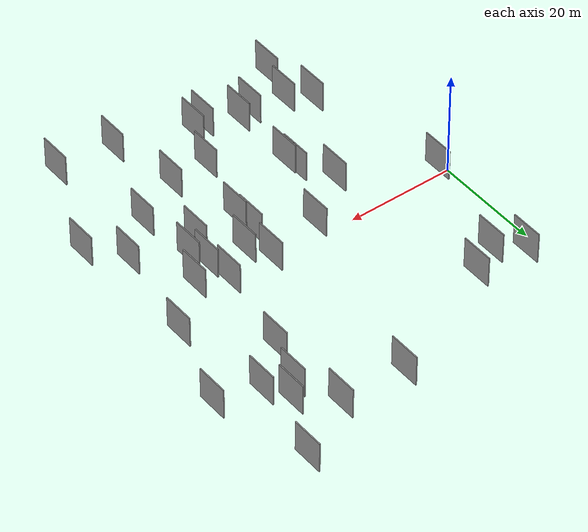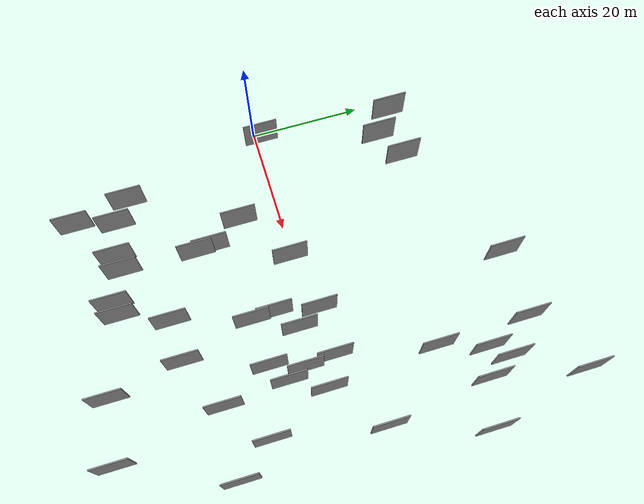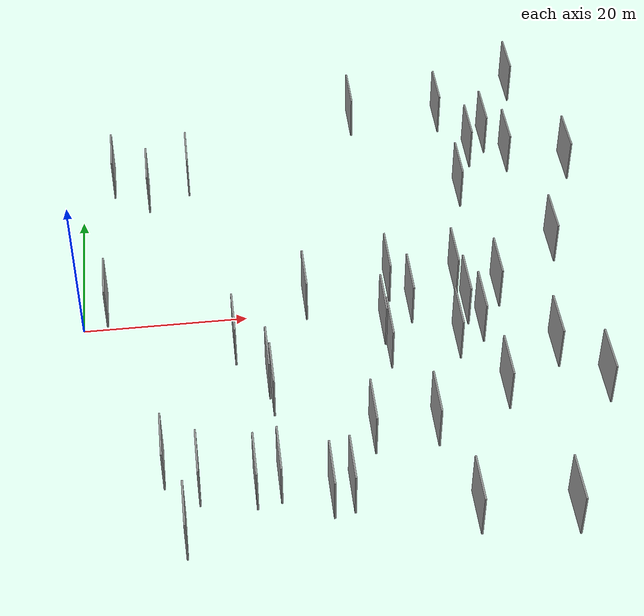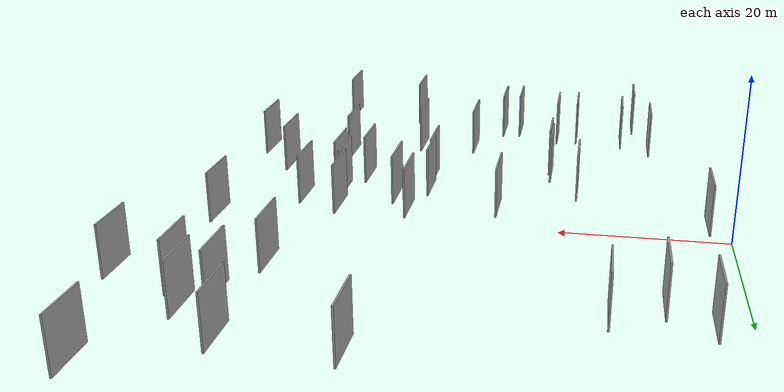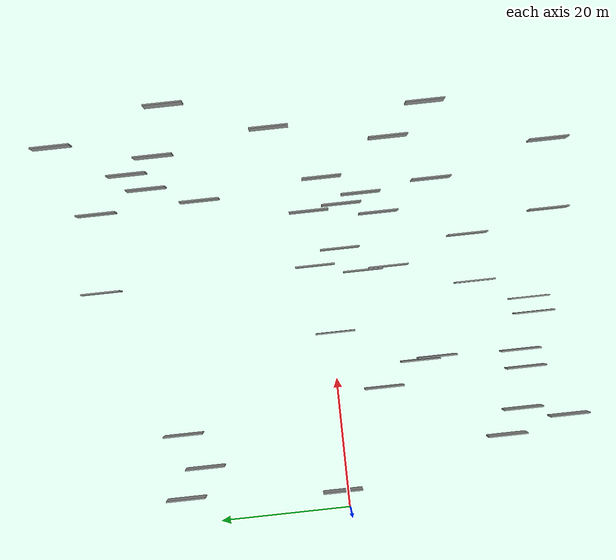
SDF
<sdf version="1.6">
 <world name="default">
  <scene>
   <sky><clouds><speed>12</speed></clouds></sky>
   <ambient>0.4 0.4 0.4 1</ambient>
   <background>0.7 0.7 0.7 1</background>
   <shadows>1</shadows>
  </scene>
  <gravity>0 0 -9.8066</gravity>
  <magnetic_field>6e-06 2.3e-05 -4.2e-05</magnetic_field>
  <physics default="0" name="default_physics" type="ode">
   <ode>
    <solver>
     <type>quick</type>
     <iters>10</iters>
     <sor>1.0</sor>
     <use_dynamic_moi_rescaling>0</use_dynamic_moi_rescaling>
    </solver>
    <constraints>
     <cfm>0</cfm>
     <erp>0.2</erp>
     <contact_max_correcting_vel>100</contact_max_correcting_vel>
     <contact_surface_layer>0.001</contact_surface_layer>
    </constraints>
   </ode>
   <max_step_size>0.004</max_step_size>
   <real_time_factor>1</real_time_factor>
   <real_time_update_rate>250</real_time_update_rate>
  </physics>
  <light name="sun" type="directional">
   <pose>0 0 10 0 0 0</pose>
   <diffuse>0.8 0.8 0.8 1</diffuse>
   <specular>0.2 0.2 0.2 1</specular>
   <attenuation>
    <range>1000</range>
    <constant>0.9</constant>
    <linear>0.01</linear>
    <quadratic>0.001</quadratic>
   </attenuation>
   <direction>-0.5 0.1 -0.9</direction>
  </light>
  <model name="grey_wall_1">
   <static>1</static>
   <pose>51.9781 25.9054 2.5 0.000000 0.000000 1.570796</pose>
   <link name="link">
    <pose>0 0 3.00 0 0 0</pose>
    <collision name="collision"><geometry><box><size>6.00 0.2 6.00</size></box></geometry></collision>
    <visual name="visual">
     <cast_shadows>0</cast_shadows>
     <geometry><box><size>6.00 0.2 6.00</size></box></geometry>
     <material>
      <script>
       <uri>model://grey_wall/materials/scripts</uri>
       <uri>model://grey_wall/materials/textures</uri>
       <name>vrc/grey_wall</name>
      </script>
     </material>
    </visual>
   </link>
  </model>
  <model name="grey_wall_2">
   <static>1</static>
   <pose>56.0913 -11.6065 2.5 0.000000 0.000000 1.570796</pose>
   <link name="link">
    <pose>0 0 3.00 0 0 0</pose>
    <collision name="collision"><geometry><box><size>6.00 0.2 6.00</size></box></geometry></collision>
    <visual name="visual">
     <cast_shadows>0</cast_shadows>
     <geometry><box><size>6.00 0.2 6.00</size></box></geometry>
     <material>
      <script>
       <uri>model://grey_wall/materials/scripts</uri>
       <uri>model://grey_wall/materials/textures</uri>
       <name>vrc/grey_wall</name>
      </script>
     </material>
    </visual>
   </link>
  </model>
  <model name="grey_wall_3">
   <static>1</static>
   <pose>12.7537 -27.6834 2.5 0.000000 0.000000 1.570796</pose>
   <link name="link">
    <pose>0 0 3.00 0 0 0</pose>
    <collision name="collision"><geometry><box><size>6.00 0.2 6.00</size></box></geometry></collision>
    <visual name="visual">
     <cast_shadows>0</cast_shadows>
     <geometry><box><size>6.00 0.2 6.00</size></box></geometry>
     <material>
      <script>
       <uri>model://grey_wall/materials/scripts</uri>
       <uri>model://grey_wall/materials/textures</uri>
       <name>vrc/grey_wall</name>
      </script>
     </material>
    </visual>
   </link>
  </model>
  <model name="grey_wall_4">
   <static>1</static>
   <pose>27.2120 -0.4861 2.5 0.000000 0.000000 1.570796</pose>
   <link name="link">
    <pose>0 0 3.00 0 0 0</pose>
    <collision name="collision"><geometry><box><size>6.00 0.2 6.00</size></box></geometry></collision>
    <visual name="visual">
     <cast_shadows>0</cast_shadows>
     <geometry><box><size>6.00 0.2 6.00</size></box></geometry>
     <material>
      <script>
       <uri>model://grey_wall/materials/scripts</uri>
       <uri>model://grey_wall/materials/textures</uri>
       <name>vrc/grey_wall</name>
      </script>
     </material>
    </visual>
   </link>
  </model>
  <model name="grey_wall_5">
   <static>1</static>
   <pose>36.1838 -5.7018 2.5 0.000000 0.000000 1.570796</pose>
   <link name="link">
    <pose>0 0 3.00 0 0 0</pose>
    <collision name="collision"><geometry><box><size>6.00 0.2 6.00</size></box></geometry></collision>
    <visual name="visual">
     <cast_shadows>0</cast_shadows>
     <geometry><box><size>6.00 0.2 6.00</size></box></geometry>
     <material>
      <script>
       <uri>model://grey_wall/materials/scripts</uri>
       <uri>model://grey_wall/materials/textures</uri>
       <name>vrc/grey_wall</name>
      </script>
     </material>
    </visual>
   </link>
  </model>
  <model name="grey_wall_6">
   <static>1</static>
   <pose>8.8174 21.3734 2.5 0.000000 0.000000 1.570796</pose>
   <link name="link">
    <pose>0 0 3.00 0 0 0</pose>
    <collision name="collision"><geometry><box><size>6.00 0.2 6.00</size></box></geometry></collision>
    <visual name="visual">
     <cast_shadows>0</cast_shadows>
     <geometry><box><size>6.00 0.2 6.00</size></box></geometry>
     <material>
      <script>
       <uri>model://grey_wall/materials/scripts</uri>
       <uri>model://grey_wall/materials/textures</uri>
       <name>vrc/grey_wall</name>
      </script>
     </material>
    </visual>
   </link>
  </model>
  <model name="grey_wall_7">
   <static>1</static>
   <pose>36.9285 34.3431 2.5 0.000000 0.000000 1.570796</pose>
   <link name="link">
    <pose>0 0 3.00 0 0 0</pose>
    <collision name="collision"><geometry><box><size>6.00 0.2 6.00</size></box></geometry></collision>
    <visual name="visual">
     <cast_shadows>0</cast_shadows>
     <geometry><box><size>6.00 0.2 6.00</size></box></geometry>
     <material>
      <script>
       <uri>model://grey_wall/materials/scripts</uri>
       <uri>model://grey_wall/materials/textures</uri>
       <name>vrc/grey_wall</name>
      </script>
     </material>
    </visual>
   </link>
  </model>
  <model name="grey_wall_8">
   <static>1</static>
   <pose>40.0391 -22.0690 2.5 0.000000 0.000000 1.570796</pose>
   <link name="link">
    <pose>0 0 3.00 0 0 0</pose>
    <collision name="collision"><geometry><box><size>6.00 0.2 6.00</size></box></geometry></collision>
    <visual name="visual">
     <cast_shadows>0</cast_shadows>
     <geometry><box><size>6.00 0.2 6.00</size></box></geometry>
     <material>
      <script>
       <uri>model://grey_wall/materials/scripts</uri>
       <uri>model://grey_wall/materials/textures</uri>
       <name>vrc/grey_wall</name>
      </script>
     </material>
    </visual>
   </link>
  </model>
  <model name="grey_wall_9">
   <static>1</static>
   <pose>49.0383 -17.4662 2.5 0.000000 0.000000 1.570796</pose>
   <link name="link">
    <pose>0 0 3.00 0 0 0</pose>
    <collision name="collision"><geometry><box><size>6.00 0.2 6.00</size></box></geometry></collision>
    <visual name="visual">
     <cast_shadows>0</cast_shadows>
     <geometry><box><size>6.00 0.2 6.00</size></box></geometry>
     <material>
      <script>
       <uri>model://grey_wall/materials/scripts</uri>
       <uri>model://grey_wall/materials/textures</uri>
       <name>vrc/grey_wall</name>
      </script>
     </material>
    </visual>
   </link>
  </model>
  <model name="grey_wall_10">
   <static>1</static>
   <pose>60.8531 -17.7685 2.5 0.000000 0.000000 1.570796</pose>
   <link name="link">
    <pose>0 0 3.00 0 0 0</pose>
    <collision name="collision"><geometry><box><size>6.00 0.2 6.00</size></box></geometry></collision>
    <visual name="visual">
     <cast_shadows>0</cast_shadows>
     <geometry><box><size>6.00 0.2 6.00</size></box></geometry>
     <material>
      <script>
       <uri>model://grey_wall/materials/scripts</uri>
       <uri>model://grey_wall/materials/textures</uri>
       <name>vrc/grey_wall</name>
      </script>
     </material>
    </visual>
   </link>
  </model>
  <model name="grey_wall_11">
   <static>1</static>
   <pose>46.0210 1.5895 2.5 0.000000 0.000000 1.570796</pose>
   <link name="link">
    <pose>0 0 3.00 0 0 0</pose>
    <collision name="collision"><geometry><box><size>6.00 0.2 6.00</size></box></geometry></collision>
    <visual name="visual">
     <cast_shadows>0</cast_shadows>
     <geometry><box><size>6.00 0.2 6.00</size></box></geometry>
     <material>
      <script>
       <uri>model://grey_wall/materials/scripts</uri>
       <uri>model://grey_wall/materials/textures</uri>
       <name>vrc/grey_wall</name>
      </script>
     </material>
    </visual>
   </link>
  </model>
  <model name="grey_wall_12">
   <static>1</static>
   <pose>50.9565 -0.8610 2.5 0.000000 0.000000 1.570796</pose>
   <link name="link">
    <pose>0 0 3.00 0 0 0</pose>
    <collision name="collision"><geometry><box><size>6.00 0.2 6.00</size></box></geometry></collision>
    <visual name="visual">
     <cast_shadows>0</cast_shadows>
     <geometry><box><size>6.00 0.2 6.00</size></box></geometry>
     <material>
      <script>
       <uri>model://grey_wall/materials/scripts</uri>
       <uri>model://grey_wall/materials/textures</uri>
       <name>vrc/grey_wall</name>
      </script>
     </material>
    </visual>
   </link>
  </model>
  <model name="grey_wall_13">
   <static>1</static>
   <pose>18.1376 -7.0497 2.5 0.000000 0.000000 1.570796</pose>
   <link name="link">
    <pose>0 0 3.00 0 0 0</pose>
    <collision name="collision"><geometry><box><size>6.00 0.2 6.00</size></box></geometry></collision>
    <visual name="visual">
     <cast_shadows>0</cast_shadows>
     <geometry><box><size>6.00 0.2 6.00</size></box></geometry>
     <material>
      <script>
       <uri>model://grey_wall/materials/scripts</uri>
       <uri>model://grey_wall/materials/textures</uri>
       <name>vrc/grey_wall</name>
      </script>
     </material>
    </visual>
   </link>
  </model>
  <model name="grey_wall_14">
   <static>1</static>
   <pose>21.6656 -12.9309 2.5 0.000000 0.000000 1.570796</pose>
   <link name="link">
    <pose>0 0 3.00 0 0 0</pose>
    <collision name="collision"><geometry><box><size>6.00 0.2 6.00</size></box></geometry></collision>
    <visual name="visual">
     <cast_shadows>0</cast_shadows>
     <geometry><box><size>6.00 0.2 6.00</size></box></geometry>
     <material>
      <script>
       <uri>model://grey_wall/materials/scripts</uri>
       <uri>model://grey_wall/materials/textures</uri>
       <name>vrc/grey_wall</name>
      </script>
     </material>
    </visual>
   </link>
  </model>
  <model name="grey_wall_15">
   <static>1</static>
   <pose>49.3695 18.0030 2.5 0.000000 0.000000 1.570796</pose>
   <link name="link">
    <pose>0 0 3.00 0 0 0</pose>
    <collision name="collision"><geometry><box><size>6.00 0.2 6.00</size></box></geometry></collision>
    <visual name="visual">
     <cast_shadows>0</cast_shadows>
     <geometry><box><size>6.00 0.2 6.00</size></box></geometry>
     <material>
      <script>
       <uri>model://grey_wall/materials/scripts</uri>
       <uri>model://grey_wall/materials/textures</uri>
       <name>vrc/grey_wall</name>
      </script>
     </material>
    </visual>
   </link>
  </model>
  <model name="grey_wall_16">
   <static>1</static>
   <pose>42.5664 -34.7586 2.5 0.000000 0.000000 1.570796</pose>
   <link name="link">
    <pose>0 0 3.00 0 0 0</pose>
    <collision name="collision"><geometry><box><size>6.00 0.2 6.00</size></box></geometry></collision>
    <visual name="visual">
     <cast_shadows>0</cast_shadows>
     <geometry><box><size>6.00 0.2 6.00</size></box></geometry>
     <material>
      <script>
       <uri>model://grey_wall/materials/scripts</uri>
       <uri>model://grey_wall/materials/textures</uri>
       <name>vrc/grey_wall</name>
      </script>
     </material>
    </visual>
   </link>
  </model>
  <model name="grey_wall_17">
   <static>1</static>
   <pose>18.9485 -28.7986 2.5 0.000000 0.000000 1.570796</pose>
   <link name="link">
    <pose>0 0 3.00 0 0 0</pose>
    <collision name="collision"><geometry><box><size>6.00 0.2 6.00</size></box></geometry></collision>
    <visual name="visual">
     <cast_shadows>0</cast_shadows>
     <geometry><box><size>6.00 0.2 6.00</size></box></geometry>
     <material>
      <script>
       <uri>model://grey_wall/materials/scripts</uri>
       <uri>model://grey_wall/materials/textures</uri>
       <name>vrc/grey_wall</name>
      </script>
     </material>
    </visual>
   </link>
  </model>
  <model name="grey_wall_18">
   <static>1</static>
   <pose>56.8432 24.3454 2.5 0.000000 0.000000 1.570796</pose>
   <link name="link">
    <pose>0 0 3.00 0 0 0</pose>
    <collision name="collision"><geometry><box><size>6.00 0.2 6.00</size></box></geometry></collision>
    <visual name="visual">
     <cast_shadows>0</cast_shadows>
     <geometry><box><size>6.00 0.2 6.00</size></box></geometry>
     <material>
      <script>
       <uri>model://grey_wall/materials/scripts</uri>
       <uri>model://grey_wall/materials/textures</uri>
       <name>vrc/grey_wall</name>
      </script>
     </material>
    </visual>
   </link>
  </model>
  <model name="grey_wall_19">
   <static>1</static>
   <pose>47.9826 -6.5462 2.5 0.000000 0.000000 1.570796</pose>
   <link name="link">
    <pose>0 0 3.00 0 0 0</pose>
    <collision name="collision"><geometry><box><size>6.00 0.2 6.00</size></box></geometry></collision>
    <visual name="visual">
     <cast_shadows>0</cast_shadows>
     <geometry><box><size>6.00 0.2 6.00</size></box></geometry>
     <material>
      <script>
       <uri>model://grey_wall/materials/scripts</uri>
       <uri>model://grey_wall/materials/textures</uri>
       <name>vrc/grey_wall</name>
      </script>
     </material>
    </visual>
   </link>
  </model>
  <model name="grey_wall_20">
   <static>1</static>
   <pose>27.1281 -30.9101 2.5 0.000000 0.000000 1.570796</pose>
   <link name="link">
    <pose>0 0 3.00 0 0 0</pose>
    <collision name="collision"><geometry><box><size>6.00 0.2 6.00</size></box></geometry></collision>
    <visual name="visual">
     <cast_shadows>0</cast_shadows>
     <geometry><box><size>6.00 0.2 6.00</size></box></geometry>
     <material>
      <script>
       <uri>model://grey_wall/materials/scripts</uri>
       <uri>model://grey_wall/materials/textures</uri>
       <name>vrc/grey_wall</name>
      </script>
     </material>
    </visual>
   </link>
  </model>
  <model name="grey_wall_21">
   <static>1</static>
   <pose>8.9676 -24.8882 2.5 0.000000 0.000000 1.570796</pose>
   <link name="link">
    <pose>0 0 3.00 0 0 0</pose>
    <collision name="collision"><geometry><box><size>6.00 0.2 6.00</size></box></geometry></collision>
    <visual name="visual">
     <cast_shadows>0</cast_shadows>
     <geometry><box><size>6.00 0.2 6.00</size></box></geometry>
     <material>
      <script>
       <uri>model://grey_wall/materials/scripts</uri>
       <uri>model://grey_wall/materials/textures</uri>
       <name>vrc/grey_wall</name>
      </script>
     </material>
    </visual>
   </link>
  </model>
  <model name="grey_wall_22">
   <static>1</static>
   <pose>64.5360 22.0101 2.5 0.000000 0.000000 1.570796</pose>
   <link name="link">
    <pose>0 0 3.00 0 0 0</pose>
    <collision name="collision"><geometry><box><size>6.00 0.2 6.00</size></box></geometry></collision>
    <visual name="visual">
     <cast_shadows>0</cast_shadows>
     <geometry><box><size>6.00 0.2 6.00</size></box></geometry>
     <material>
      <script>
       <uri>model://grey_wall/materials/scripts</uri>
       <uri>model://grey_wall/materials/textures</uri>
       <name>vrc/grey_wall</name>
      </script>
     </material>
    </visual>
   </link>
  </model>
  <model name="grey_wall_23">
   <static>1</static>
   <pose>59.8743 39.7176 2.5 0.000000 0.000000 1.570796</pose>
   <link name="link">
    <pose>0 0 3.00 0 0 0</pose>
    <collision name="collision"><geometry><box><size>6.00 0.2 6.00</size></box></geometry></collision>
    <visual name="visual">
     <cast_shadows>0</cast_shadows>
     <geometry><box><size>6.00 0.2 6.00</size></box></geometry>
     <material>
      <script>
       <uri>model://grey_wall/materials/scripts</uri>
       <uri>model://grey_wall/materials/textures</uri>
       <name>vrc/grey_wall</name>
      </script>
     </material>
    </visual>
   </link>
  </model>
  <model name="grey_wall_24">
   <static>1</static>
   <pose>53.1511 -35.8574 2.5 0.000000 0.000000 1.570796</pose>
   <link name="link">
    <pose>0 0 3.00 0 0 0</pose>
    <collision name="collision"><geometry><box><size>6.00 0.2 6.00</size></box></geometry></collision>
    <visual name="visual">
     <cast_shadows>0</cast_shadows>
     <geometry><box><size>6.00 0.2 6.00</size></box></geometry>
     <material>
      <script>
       <uri>model://grey_wall/materials/scripts</uri>
       <uri>model://grey_wall/materials/textures</uri>
       <name>vrc/grey_wall</name>
      </script>
     </material>
    </visual>
   </link>
  </model>
  <model name="grey_wall_25">
   <static>1</static>
   <pose>4.3722 24.7497 2.5 0.000000 0.000000 1.570796</pose>
   <link name="link">
    <pose>0 0 3.00 0 0 0</pose>
    <collision name="collision"><geometry><box><size>6.00 0.2 6.00</size></box></geometry></collision>
    <visual name="visual">
     <cast_shadows>0</cast_shadows>
     <geometry><box><size>6.00 0.2 6.00</size></box></geometry>
     <material>
      <script>
       <uri>model://grey_wall/materials/scripts</uri>
       <uri>model://grey_wall/materials/textures</uri>
       <name>vrc/grey_wall</name>
      </script>
     </material>
    </visual>
   </link>
  </model>
  <model name="grey_wall_26">
   <static>1</static>
   <pose>48.9256 33.8816 2.5 0.000000 0.000000 1.570796</pose>
   <link name="link">
    <pose>0 0 3.00 0 0 0</pose>
    <collision name="collision"><geometry><box><size>6.00 0.2 6.00</size></box></geometry></collision>
    <visual name="visual">
     <cast_shadows>0</cast_shadows>
     <geometry><box><size>6.00 0.2 6.00</size></box></geometry>
     <material>
      <script>
       <uri>model://grey_wall/materials/scripts</uri>
       <uri>model://grey_wall/materials/textures</uri>
       <name>vrc/grey_wall</name>
      </script>
     </material>
    </visual>
   </link>
  </model>
  <model name="grey_wall_27">
   <static>1</static>
   <pose>59.3727 6.3657 2.5 0.000000 0.000000 1.570796</pose>
   <link name="link">
    <pose>0 0 3.00 0 0 0</pose>
    <collision name="collision"><geometry><box><size>6.00 0.2 6.00</size></box></geometry></collision>
    <visual name="visual">
     <cast_shadows>0</cast_shadows>
     <geometry><box><size>6.00 0.2 6.00</size></box></geometry>
     <material>
      <script>
       <uri>model://grey_wall/materials/scripts</uri>
       <uri>model://grey_wall/materials/textures</uri>
       <name>vrc/grey_wall</name>
      </script>
     </material>
    </visual>
   </link>
  </model>
  <model name="grey_wall_28">
   <static>1</static>
   <pose>54.4715 28.6567 2.5 0.000000 0.000000 1.570796</pose>
   <link name="link">
    <pose>0 0 3.00 0 0 0</pose>
    <collision name="collision"><geometry><box><size>6.00 0.2 6.00</size></box></geometry></collision>
    <visual name="visual">
     <cast_shadows>0</cast_shadows>
     <geometry><box><size>6.00 0.2 6.00</size></box></geometry>
     <material>
      <script>
       <uri>model://grey_wall/materials/scripts</uri>
       <uri>model://grey_wall/materials/textures</uri>
       <name>vrc/grey_wall</name>
      </script>
     </material>
    </visual>
   </link>
  </model>
  <model name="grey_wall_29">
   <static>1</static>
   <pose>29.4335 -30.4135 2.5 0.000000 0.000000 1.570796</pose>
   <link name="link">
    <pose>0 0 3.00 0 0 0</pose>
    <collision name="collision"><geometry><box><size>6.00 0.2 6.00</size></box></geometry></collision>
    <visual name="visual">
     <cast_shadows>0</cast_shadows>
     <geometry><box><size>6.00 0.2 6.00</size></box></geometry>
     <material>
      <script>
       <uri>model://grey_wall/materials/scripts</uri>
       <uri>model://grey_wall/materials/textures</uri>
       <name>vrc/grey_wall</name>
      </script>
     </material>
    </visual>
   </link>
  </model>
  <model name="grey_wall_30">
   <static>1</static>
   <pose>32.7660 -22.4336 2.5 0.000000 0.000000 1.570796</pose>
   <link name="link">
    <pose>0 0 3.00 0 0 0</pose>
    <collision name="collision"><geometry><box><size>6.00 0.2 6.00</size></box></geometry></collision>
    <visual name="visual">
     <cast_shadows>0</cast_shadows>
     <geometry><box><size>6.00 0.2 6.00</size></box></geometry>
     <material>
      <script>
       <uri>model://grey_wall/materials/scripts</uri>
       <uri>model://grey_wall/materials/textures</uri>
       <name>vrc/grey_wall</name>
      </script>
     </material>
    </visual>
   </link>
  </model>
  <model name="grey_wall_31">
   <static>1</static>
   <pose>11.0332 -34.5940 2.5 0.000000 0.000000 1.570796</pose>
   <link name="link">
    <pose>0 0 3.00 0 0 0</pose>
    <collision name="collision"><geometry><box><size>6.00 0.2 6.00</size></box></geometry></collision>
    <visual name="visual">
     <cast_shadows>0</cast_shadows>
     <geometry><box><size>6.00 0.2 6.00</size></box></geometry>
     <material>
      <script>
       <uri>model://grey_wall/materials/scripts</uri>
       <uri>model://grey_wall/materials/textures</uri>
       <name>vrc/grey_wall</name>
      </script>
     </material>
    </visual>
   </link>
  </model>
  <model name="grey_wall_32">
   <static>1</static>
   <pose>36.4135 -9.6289 2.5 0.000000 0.000000 1.570796</pose>
   <link name="link">
    <pose>0 0 3.00 0 0 0</pose>
    <collision name="collision"><geometry><box><size>6.00 0.2 6.00</size></box></geometry></collision>
    <visual name="visual">
     <cast_shadows>0</cast_shadows>
     <geometry><box><size>6.00 0.2 6.00</size></box></geometry>
     <material>
      <script>
       <uri>model://grey_wall/materials/scripts</uri>
       <uri>model://grey_wall/materials/textures</uri>
       <name>vrc/grey_wall</name>
      </script>
     </material>
    </visual>
   </link>
  </model>
  <model name="grey_wall_33">
   <static>1</static>
   <pose>14.0999 24.1783 2.5 0.000000 0.000000 1.570796</pose>
   <link name="link">
    <pose>0 0 3.00 0 0 0</pose>
    <collision name="collision"><geometry><box><size>6.00 0.2 6.00</size></box></geometry></collision>
    <visual name="visual">
     <cast_shadows>0</cast_shadows>
     <geometry><box><size>6.00 0.2 6.00</size></box></geometry>
     <material>
      <script>
       <uri>model://grey_wall/materials/scripts</uri>
       <uri>model://grey_wall/materials/textures</uri>
       <name>vrc/grey_wall</name>
      </script>
     </material>
    </visual>
   </link>
  </model>
  <model name="grey_wall_34">
   <static>1</static>
   <pose>3.0726 0.9121 2.5 0.000000 0.000000 1.570796</pose>
   <link name="link">
    <pose>0 0 3.00 0 0 0</pose>
    <collision name="collision"><geometry><box><size>6.00 0.2 6.00</size></box></geometry></collision>
    <visual name="visual">
     <cast_shadows>0</cast_shadows>
     <geometry><box><size>6.00 0.2 6.00</size></box></geometry>
     <material>
      <script>
       <uri>model://grey_wall/materials/scripts</uri>
       <uri>model://grey_wall/materials/textures</uri>
       <name>vrc/grey_wall</name>
      </script>
     </material>
    </visual>
   </link>
  </model>
  <model name="grey_wall_35">
   <static>1</static>
   <pose>21.9446 -15.5399 2.5 0.000000 0.000000 1.570796</pose>
   <link name="link">
    <pose>0 0 3.00 0 0 0</pose>
    <collision name="collision"><geometry><box><size>6.00 0.2 6.00</size></box></geometry></collision>
    <visual name="visual">
     <cast_shadows>0</cast_shadows>
     <geometry><box><size>6.00 0.2 6.00</size></box></geometry>
     <material>
      <script>
       <uri>model://grey_wall/materials/scripts</uri>
       <uri>model://grey_wall/materials/textures</uri>
       <name>vrc/grey_wall</name>
      </script>
     </material>
    </visual>
   </link>
  </model>
  <model name="grey_wall_36">
   <static>1</static>
   <pose>46.6433 -3.4458 2.5 0.000000 0.000000 1.570796</pose>
   <link name="link">
    <pose>0 0 3.00 0 0 0</pose>
    <collision name="collision"><geometry><box><size>6.00 0.2 6.00</size></box></geometry></collision>
    <visual name="visual">
     <cast_shadows>0</cast_shadows>
     <geometry><box><size>6.00 0.2 6.00</size></box></geometry>
     <material>
      <script>
       <uri>model://grey_wall/materials/scripts</uri>
       <uri>model://grey_wall/materials/textures</uri>
       <name>vrc/grey_wall</name>
      </script>
     </material>
    </visual>
   </link>
  </model>
  <model name="grey_wall_37">
   <static>1</static>
   <pose>44.7668 -8.9408 2.5 0.000000 0.000000 1.570796</pose>
   <link name="link">
    <pose>0 0 3.00 0 0 0</pose>
    <collision name="collision"><geometry><box><size>6.00 0.2 6.00</size></box></geometry></collision>
    <visual name="visual">
     <cast_shadows>0</cast_shadows>
     <geometry><box><size>6.00 0.2 6.00</size></box></geometry>
     <material>
      <script>
       <uri>model://grey_wall/materials/scripts</uri>
       <uri>model://grey_wall/materials/textures</uri>
       <name>vrc/grey_wall</name>
      </script>
     </material>
    </visual>
   </link>
  </model>
  <model name="grey_wall_38">
   <static>1</static>
   <pose>21.6440 -28.2653 2.5 0.000000 0.000000 1.570796</pose>
   <link name="link">
    <pose>0 0 3.00 0 0 0</pose>
    <collision name="collision"><geometry><box><size>6.00 0.2 6.00</size></box></geometry></collision>
    <visual name="visual">
     <cast_shadows>0</cast_shadows>
     <geometry><box><size>6.00 0.2 6.00</size></box></geometry>
     <material>
      <script>
       <uri>model://grey_wall/materials/scripts</uri>
       <uri>model://grey_wall/materials/textures</uri>
       <name>vrc/grey_wall</name>
      </script>
     </material>
    </visual>
   </link>
  </model>
  <model name="grey_wall_39">
   <static>1</static>
   <pose>37.6315 1.5068 2.5 0.000000 0.000000 1.570796</pose>
   <link name="link">
    <pose>0 0 3.00 0 0 0</pose>
    <collision name="collision"><geometry><box><size>6.00 0.2 6.00</size></box></geometry></collision>
    <visual name="visual">
     <cast_shadows>0</cast_shadows>
     <geometry><box><size>6.00 0.2 6.00</size></box></geometry>
     <material>
      <script>
       <uri>model://grey_wall/materials/scripts</uri>
       <uri>model://grey_wall/materials/textures</uri>
       <name>vrc/grey_wall</name>
      </script>
     </material>
    </visual>
   </link>
  </model>
  <model name="grey_wall_40">
   <static>1</static>
   <pose>39.8778 -2.5215 2.5 0.000000 0.000000 1.570796</pose>
   <link name="link">
    <pose>0 0 3.00 0 0 0</pose>
    <collision name="collision"><geometry><box><size>6.00 0.2 6.00</size></box></geometry></collision>
    <visual name="visual">
     <cast_shadows>0</cast_shadows>
     <geometry><box><size>6.00 0.2 6.00</size></box></geometry>
     <material>
      <script>
       <uri>model://grey_wall/materials/scripts</uri>
       <uri>model://grey_wall/materials/textures</uri>
       <name>vrc/grey_wall</name>
      </script>
     </material>
    </visual>
   </link>
  </model>
 </world>
</sdf>
